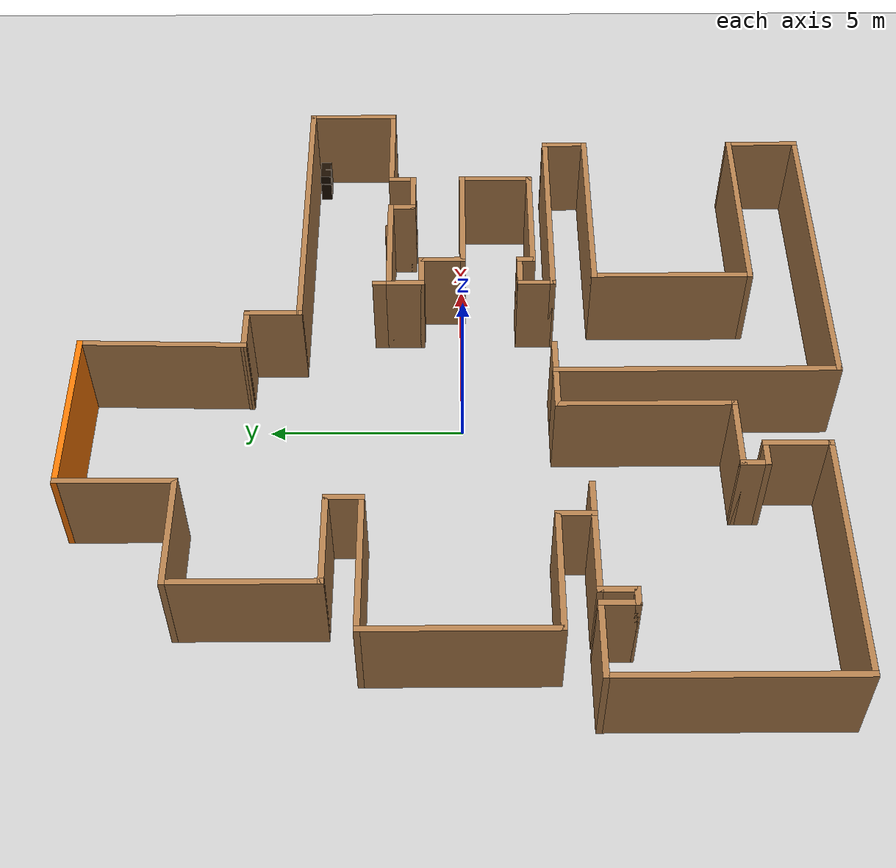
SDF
<sdf version="1.6">
 <world name="default">
  <light name="sun" type="directional">
   <pose>0 0 10 0 -0 0</pose>
   <diffuse>0.8 0.8 0.8 1</diffuse>
   <specular>0.2 0.2 0.2 1</specular>
   <attenuation>
    <range>1000</range>
    <constant>0.9</constant>
    <linear>0.01</linear>
    <quadratic>0.001</quadratic>
   </attenuation>
   <direction>-0.5 0.1 -0.9</direction>
  </light>
  <model name="ground_plane">
   <static>1</static>
   <link name="link">
    <collision name="collision">
     <geometry><plane><normal>0 0 1</normal><size>100 100</size></plane></geometry>
     <surface>
      <contact><collide_bitmask>65535</collide_bitmask></contact>
      <friction><ode><mu>100</mu><mu2>50</mu2></ode></friction>
     </surface>
    </collision>
    <visual name="visual">
     <cast_shadows>0</cast_shadows>
     <geometry><plane><normal>0 0 1</normal><size>100 100</size></plane></geometry>
     <material>
      <script><uri>file://media/materials/scripts/gazebo.material</uri><name>Gazebo/Grey</name></script>
     </material>
    </visual>
   </link>
  </model>
  <gravity>0 0 -9.8</gravity>
  <magnetic_field>6e-06 2.3e-05 -4.2e-05</magnetic_field>
  <atmosphere type="adiabatic"/>
  <physics name="default_physics" default="0" type="ode">
   <max_step_size>0.001</max_step_size>
   <real_time_factor>1</real_time_factor>
   <real_time_update_rate>1000</real_time_update_rate>
  </physics>
  <scene><ambient>0.4 0.4 0.4 1</ambient><background>0.7 0.7 0.7 1</background><shadows>1</shadows></scene>
  <audio><device>default</device></audio>
  <spherical_coordinates>
   <surface_model>EARTH_WGS84</surface_model>
   <latitude_deg>0</latitude_deg>
   <longitude_deg>0</longitude_deg>
   <elevation>0</elevation>
   <heading_deg>0</heading_deg>
  </spherical_coordinates>
  <model name="map_123">
   <pose>0.487102 0.144012 0 0 -0 0</pose>
   <link name="Wall_100">
    <collision name="Wall_100_Collision">
     <geometry><box><size>1.25 0.15 2.5</size></box></geometry>
     <pose>0 0 1.25 0 -0 0</pose>
    </collision>
    <visual name="Wall_100_Visual">
     <pose>0 0 1.25 0 -0 0</pose>
     <geometry><box><size>1.25 0.15 2.5</size></box></geometry>
     <material>
      <script><uri>file://media/materials/scripts/gazebo.material</uri><name>Gazebo/Wood</name></script>
      <ambient>1 1 1 1</ambient>
     </material>
     <meta><layer>0</layer></meta>
    </visual>
    <pose>0.978363 5.41027 0 0 -0 0</pose>
   </link>
   <link name="Wall_101">
    <collision name="Wall_101_Collision">
     <geometry><box><size>1.5 0.15 2.5</size></box></geometry>
     <pose>0 0 1.25 0 -0 0</pose>
    </collision>
    <visual name="Wall_101_Visual">
     <pose>0 0 1.25 0 -0 0</pose>
     <geometry><box><size>1.5 0.15 2.5</size></box></geometry>
     <material>
      <script><uri>file://media/materials/scripts/gazebo.material</uri><name>Gazebo/Wood</name></script>
      <ambient>1 1 1 1</ambient>
     </material>
     <meta><layer>0</layer></meta>
    </visual>
    <pose>1.52836 4.73527 0 0 -0 -1.5708</pose>
   </link>
   <link name="Wall_104">
    <collision name="Wall_104_Collision">
     <geometry><box><size>7.75 0.15 2.5</size></box></geometry>
     <pose>0 0 1.25 0 -0 0</pose>
    </collision>
    <visual name="Wall_104_Visual">
     <pose>0 0 1.25 0 -0 0</pose>
     <geometry><box><size>7.75 0.15 2.5</size></box></geometry>
     <material>
      <script><uri>file://media/materials/scripts/gazebo.material</uri><name>Gazebo/Wood</name></script>
      <ambient>1 1 1 1</ambient>
     </material>
     <meta><layer>0</layer></meta>
    </visual>
    <pose>5.32836 4.06027 0 0 -0 0</pose>
   </link>
   <link name="Wall_105">
    <collision name="Wall_105_Collision">
     <geometry><box><size>2.43611 0.15 2.5</size></box></geometry>
     <pose>0 0 1.25 0 -0 0</pose>
    </collision>
    <visual name="Wall_105_Visual">
     <pose>0 0 1.25 0 -0 0</pose>
     <geometry><box><size>2.43611 0.15 2.5</size></box></geometry>
     <material>
      <script><uri>file://media/materials/scripts/gazebo.material</uri><name>Gazebo/Wood</name></script>
      <ambient>1 1 1 1</ambient>
     </material>
     <meta><layer>0</layer></meta>
    </visual>
    <pose>9.12489 2.91722 0 0 -0 -1.57384</pose>
   </link>
   <link name="Wall_107">
    <collision name="Wall_107_Collision">
     <geometry><box><size>0.5 0.15 2.5</size></box></geometry>
     <pose>0 0 1.25 0 -0 0</pose>
    </collision>
    <visual name="Wall_107_Visual">
     <pose>0 0 1.25 0 -0 0</pose>
     <geometry><box><size>0.5 0.15 2.5</size></box></geometry>
     <material>
      <script><uri>file://media/materials/scripts/gazebo.material</uri><name>Gazebo/Wood</name></script>
      <ambient>1 1 1 1</ambient>
     </material>
     <meta><layer>0</layer></meta>
    </visual>
    <pose>2.57141 1.94917 0 0 -0 1.5708</pose>
   </link>
   <link name="Wall_109">
    <collision name="Wall_109_Collision">
     <geometry><box><size>1 0.15 2.5</size></box></geometry>
     <pose>0 0 1.25 0 -0 0</pose>
    </collision>
    <visual name="Wall_109_Visual">
     <pose>0 0 1.25 0 -0 0</pose>
     <geometry><box><size>1 0.15 2.5</size></box></geometry>
     <material>
      <script><uri>file://media/materials/scripts/gazebo.material</uri><name>Gazebo/Wood</name></script>
      <ambient>1 1 1 1</ambient>
     </material>
     <meta><layer>0</layer></meta>
    </visual>
    <pose>-0.003589 -2.47583 0 0 -0 0</pose>
   </link>
   <link name="Wall_111">
    <collision name="Wall_111_Collision">
     <geometry><box><size>1 0.15 2.5</size></box></geometry>
     <pose>0 0 1.25 0 -0 0</pose>
    </collision>
    <visual name="Wall_111_Visual">
     <pose>0 0 1.25 0 -0 0</pose>
     <geometry><box><size>1 0.15 2.5</size></box></geometry>
     <material>
      <script><uri>file://media/materials/scripts/gazebo.material</uri><name>Gazebo/Wood</name></script>
      <ambient>1 1 1 1</ambient>
     </material>
     <meta><layer>0</layer></meta>
    </visual>
    <pose>-4.40359 -3.17583 0 0 -0 0</pose>
   </link>
   <link name="Wall_17">
    <collision name="Wall_17_Collision">
     <geometry><box><size>3 0.15 2.5</size></box></geometry>
     <pose>0 0 1.25 0 -0 0</pose>
    </collision>
    <visual name="Wall_17_Visual">
     <pose>0 0 1.25 0 -0 0</pose>
     <geometry><box><size>3 0.15 2.5</size></box></geometry>
     <material>
      <script><uri>file://media/materials/scripts/gazebo.material</uri><name>Gazebo/Wood</name></script>
      <ambient>1 1 1 1</ambient>
     </material>
     <meta><layer>0</layer></meta>
    </visual>
    <pose>-3.82859 8.14917 0 0 -0 -1.5708</pose>
   </link>
   <link name="Wall_20">
    <collision name="Wall_20_Collision">
     <geometry><box><size>3 0.15 2.5</size></box></geometry>
     <pose>0 0 1.25 0 -0 0</pose>
    </collision>
    <visual name="Wall_20_Visual">
     <pose>0 0 1.25 0 -0 0</pose>
     <geometry><box><size>3 0.15 2.5</size></box></geometry>
     <material>
      <script><uri>file://media/materials/scripts/gazebo.material</uri><name>Gazebo/Wood</name></script>
      <ambient>1 1 1 1</ambient>
     </material>
     <meta><layer>0</layer></meta>
    </visual>
    <pose>-5.25359 6.72417 0 0 -0 3.14159</pose>
   </link>
   <link name="Wall_21">
    <collision name="Wall_21_Collision">
     <geometry><box><size>3.75 0.15 2.5</size></box></geometry>
     <pose>0 0 1.25 0 -0 0</pose>
    </collision>
    <visual name="Wall_21_Visual">
     <pose>0 0 1.25 0 -0 0</pose>
     <geometry><box><size>3.75 0.15 2.5</size></box></geometry>
     <material>
      <script><uri>file://media/materials/scripts/gazebo.material</uri><name>Gazebo/Wood</name></script>
      <ambient>1 1 1 1</ambient>
     </material>
     <meta><layer>0</layer></meta>
    </visual>
    <pose>-6.67859 4.92417 0 0 -0 -1.5708</pose>
   </link>
   <link name="Wall_22">
    <collision name="Wall_22_Collision">
     <geometry><box><size>2.5 0.15 2.5</size></box></geometry>
     <pose>0 0 1.25 0 -0 0</pose>
    </collision>
    <visual name="Wall_22_Visual">
     <pose>0 0 1.25 0 -0 0</pose>
     <geometry><box><size>2.5 0.15 2.5</size></box></geometry>
     <material>
      <script><uri>file://media/materials/scripts/gazebo.material</uri><name>Gazebo/Wood</name></script>
      <ambient>1 1 1 1</ambient>
     </material>
     <meta><layer>0</layer></meta>
    </visual>
    <pose>-5.50359 3.12417 0 0 -0 0</pose>
   </link>
   <link name="Wall_23">
    <collision name="Wall_23_Collision">
     <geometry><box><size>1 0.15 2.5</size></box></geometry>
     <pose>0 0 1.25 0 -0 0</pose>
    </collision>
    <visual name="Wall_23_Visual">
     <pose>0 0 1.25 0 -0 0</pose>
     <geometry><box><size>1 0.15 2.5</size></box></geometry>
     <material>
      <script><uri>file://media/materials/scripts/gazebo.material</uri><name>Gazebo/Wood</name></script>
      <ambient>1 1 1 1</ambient>
     </material>
     <meta><layer>0</layer></meta>
    </visual>
    <pose>-4.32859 2.69917 0 0 -0 -1.5708</pose>
   </link>
   <link name="Wall_24">
    <collision name="Wall_24_Collision">
     <geometry><box><size>3.75 0.15 2.5</size></box></geometry>
     <pose>0 0 1.25 0 -0 0</pose>
    </collision>
    <visual name="Wall_24_Visual">
     <pose>0 0 1.25 0 -0 0</pose>
     <geometry><box><size>3.75 0.15 2.5</size></box></geometry>
     <material>
      <script><uri>file://media/materials/scripts/gazebo.material</uri><name>Gazebo/Wood</name></script>
      <ambient>1 1 1 1</ambient>
     </material>
     <meta><layer>0</layer></meta>
    </visual>
    <pose>-6.12859 2.27417 0 0 -0 3.14159</pose>
   </link>
   <link name="Wall_25">
    <collision name="Wall_25_Collision">
     <geometry><box><size>4.75 0.15 2.5</size></box></geometry>
     <pose>0 0 1.25 0 -0 0</pose>
    </collision>
    <visual name="Wall_25_Visual">
     <pose>0 0 1.25 0 -0 0</pose>
     <geometry><box><size>4.75 0.15 2.5</size></box></geometry>
     <material>
      <script><uri>file://media/materials/scripts/gazebo.material</uri><name>Gazebo/Wood</name></script>
      <ambient>1 1 1 1</ambient>
     </material>
     <meta><layer>0</layer></meta>
    </visual>
    <pose>-7.92859 -0.025828 0 0 -0 -1.5708</pose>
   </link>
   <link name="Wall_26">
    <collision name="Wall_26_Collision">
     <geometry><box><size>3.25 0.15 2.5</size></box></geometry>
     <pose>0 0 1.25 0 -0 0</pose>
    </collision>
    <visual name="Wall_26_Visual">
     <pose>0 0 1.25 0 -0 0</pose>
     <geometry><box><size>3.25 0.15 2.5</size></box></geometry>
     <material>
      <script><uri>file://media/materials/scripts/gazebo.material</uri><name>Gazebo/Wood</name></script>
      <ambient>1 1 1 1</ambient>
     </material>
     <meta><layer>0</layer></meta>
    </visual>
    <pose>-6.37859 -2.32583 0 0 -0 0</pose>
   </link>
   <link name="Wall_27">
    <collision name="Wall_27_Collision">
     <geometry><box><size>1 0.15 2.5</size></box></geometry>
     <pose>0 0 1.25 0 -0 0</pose>
    </collision>
    <visual name="Wall_27_Visual">
     <pose>0 0 1.25 0 -0 0</pose>
     <geometry><box><size>1 0.15 2.5</size></box></geometry>
     <material>
      <script><uri>file://media/materials/scripts/gazebo.material</uri><name>Gazebo/Wood</name></script>
      <ambient>1 1 1 1</ambient>
     </material>
     <meta><layer>0</layer></meta>
    </visual>
    <pose>-4.82859 -2.75083 0 0 -0 -1.5708</pose>
   </link>
   <link name="Wall_28">
    <collision name="Wall_28_Collision">
     <geometry><box><size>2.25 0.15 2.5</size></box></geometry>
     <pose>0 0 1.25 0 -0 0</pose>
    </collision>
    <visual name="Wall_28_Visual">
     <pose>0 0 1.25 0 -0 0</pose>
     <geometry><box><size>2.25 0.15 2.5</size></box></geometry>
     <material>
      <script><uri>file://media/materials/scripts/gazebo.material</uri><name>Gazebo/Wood</name></script>
      <ambient>1 1 1 1</ambient>
     </material>
     <meta><layer>0</layer></meta>
    </visual>
    <pose>-5.87859 -3.17583 0 0 -0 3.14159</pose>
   </link>
   <link name="Wall_29">
    <collision name="Wall_29_Collision">
     <geometry><box><size>1 0.15 2.5</size></box></geometry>
     <pose>0 0 1.25 0 -0 0</pose>
    </collision>
    <visual name="Wall_29_Visual">
     <pose>0 0 1.25 0 -0 0</pose>
     <geometry><box><size>1 0.15 2.5</size></box></geometry>
     <material>
      <script><uri>file://media/materials/scripts/gazebo.material</uri><name>Gazebo/Wood</name></script>
      <ambient>1 1 1 1</ambient>
     </material>
     <meta><layer>0</layer></meta>
    </visual>
    <pose>-6.92859 -3.60083 0 0 -0 -1.5708</pose>
   </link>
   <link name="Wall_30">
    <collision name="Wall_30_Collision">
     <geometry><box><size>0.5 0.15 2.5</size></box></geometry>
     <pose>0 0 1.25 0 -0 0</pose>
    </collision>
    <visual name="Wall_30_Visual">
     <pose>0 0 1.25 0 -0 0</pose>
     <geometry><box><size>0.5 0.15 2.5</size></box></geometry>
     <material>
      <script><uri>file://media/materials/scripts/gazebo.material</uri><name>Gazebo/Wood</name></script>
      <ambient>1 1 1 1</ambient>
     </material>
     <meta><layer>0</layer></meta>
    </visual>
    <pose>-7.10359 -4.02583 0 0 -0 3.14159</pose>
   </link>
   <link name="Wall_31">
    <collision name="Wall_31_Collision">
     <geometry><box><size>1 0.15 2.5</size></box></geometry>
     <pose>0 0 1.25 0 -0 0</pose>
    </collision>
    <visual name="Wall_31_Visual">
     <pose>0 0 1.25 0 -0 0</pose>
     <geometry><box><size>1 0.15 2.5</size></box></geometry>
     <material>
      <script><uri>file://media/materials/scripts/gazebo.material</uri><name>Gazebo/Wood</name></script>
      <ambient>1 1 1 1</ambient>
     </material>
     <meta><layer>0</layer></meta>
    </visual>
    <pose>-7.27859 -3.60083 0 0 -0 1.5708</pose>
   </link>
   <link name="Wall_32">
    <collision name="Wall_32_Collision">
     <geometry><box><size>2 0.15 2.5</size></box></geometry>
     <pose>0 0 1.25 0 -0 0</pose>
    </collision>
    <visual name="Wall_32_Visual">
     <pose>0 0 1.25 0 -0 0</pose>
     <geometry><box><size>2 0.15 2.5</size></box></geometry>
     <material>
      <script><uri>file://media/materials/scripts/gazebo.material</uri><name>Gazebo/Wood</name></script>
      <ambient>1 1 1 1</ambient>
     </material>
     <meta><layer>0</layer></meta>
    </visual>
    <pose>-8.20359 -3.17583 0 0 -0 3.14159</pose>
   </link>
   <link name="Wall_33">
    <collision name="Wall_33_Collision">
     <geometry><box><size>6 0.15 2.5</size></box></geometry>
     <pose>0 0 1.25 0 -0 0</pose>
    </collision>
    <visual name="Wall_33_Visual">
     <pose>0 0 1.25 0 -0 0</pose>
     <geometry><box><size>6 0.15 2.5</size></box></geometry>
     <material>
      <script><uri>file://media/materials/scripts/gazebo.material</uri><name>Gazebo/Wood</name></script>
      <ambient>1 1 1 1</ambient>
     </material>
     <meta><layer>0</layer></meta>
    </visual>
    <pose>-9.12859 -6.10083 0 0 -0 -1.5708</pose>
   </link>
   <link name="Wall_34">
    <collision name="Wall_34_Collision">
     <geometry><box><size>6.5 0.15 2.5</size></box></geometry>
     <pose>0 0 1.25 0 -0 0</pose>
    </collision>
    <visual name="Wall_34_Visual">
     <pose>0 0 1.25 0 -0 0</pose>
     <geometry><box><size>6.5 0.15 2.5</size></box></geometry>
     <material>
      <script><uri>file://media/materials/scripts/gazebo.material</uri><name>Gazebo/Wood</name></script>
      <ambient>1 1 1 1</ambient>
     </material>
     <meta><layer>0</layer></meta>
    </visual>
    <pose>-5.95359 -9.02583 0 0 -0 0</pose>
   </link>
   <link name="Wall_35">
    <collision name="Wall_35_Collision">
     <geometry><box><size>1.75 0.15 2.5</size></box></geometry>
     <pose>0 0 1.25 0 -0 0</pose>
    </collision>
    <visual name="Wall_35_Visual">
     <pose>0 0 1.25 0 -0 0</pose>
     <geometry><box><size>1.75 0.15 2.5</size></box></geometry>
     <material>
      <script><uri>file://media/materials/scripts/gazebo.material</uri><name>Gazebo/Wood</name></script>
      <ambient>1 1 1 1</ambient>
     </material>
     <meta><layer>0</layer></meta>
    </visual>
    <pose>-2.77859 -8.22583 0 0 -0 1.5708</pose>
   </link>
   <link name="Wall_36">
    <collision name="Wall_36_Collision">
     <geometry><box><size>0.75 0.15 2.5</size></box></geometry>
     <pose>0 0 1.25 0 -0 0</pose>
    </collision>
    <visual name="Wall_36_Visual">
     <pose>0 0 1.25 0 -0 0</pose>
     <geometry><box><size>0.75 0.15 2.5</size></box></geometry>
     <material>
      <script><uri>file://media/materials/scripts/gazebo.material</uri><name>Gazebo/Wood</name></script>
      <ambient>1 1 1 1</ambient>
     </material>
     <meta><layer>0</layer></meta>
    </visual>
    <pose>-3.07859 -7.42583 0 0 -0 3.14159</pose>
   </link>
   <link name="Wall_37">
    <collision name="Wall_37_Collision">
     <geometry><box><size>0.75 0.15 2.5</size></box></geometry>
     <pose>0 0 1.25 0 -0 0</pose>
    </collision>
    <visual name="Wall_37_Visual">
     <pose>0 0 1.25 0 -0 0</pose>
     <geometry><box><size>0.75 0.15 2.5</size></box></geometry>
     <material>
      <script><uri>file://media/materials/scripts/gazebo.material</uri><name>Gazebo/Wood</name></script>
      <ambient>1 1 1 1</ambient>
     </material>
     <meta><layer>0</layer></meta>
    </visual>
    <pose>-3.37859 -7.12583 0 0 -0 1.5708</pose>
   </link>
   <link name="Wall_38">
    <collision name="Wall_38_Collision">
     <geometry><box><size>2 0.15 2.5</size></box></geometry>
     <pose>0 0 1.25 0 -0 0</pose>
    </collision>
    <visual name="Wall_38_Visual">
     <pose>0 0 1.25 0 -0 0</pose>
     <geometry><box><size>2 0.15 2.5</size></box></geometry>
     <material>
      <script><uri>file://media/materials/scripts/gazebo.material</uri><name>Gazebo/Wood</name></script>
      <ambient>1 1 1 1</ambient>
     </material>
     <meta><layer>0</layer></meta>
    </visual>
    <pose>-2.45359 -6.82583 0 0 -0 0</pose>
   </link>
   <link name="Wall_39">
    <collision name="Wall_39_Collision">
     <geometry><box><size>4.5 0.15 2.5</size></box></geometry>
     <pose>0 0 1.25 0 -0 0</pose>
    </collision>
    <visual name="Wall_39_Visual">
     <pose>0 0 1.25 0 -0 0</pose>
     <geometry><box><size>4.5 0.15 2.5</size></box></geometry>
     <material>
      <script><uri>file://media/materials/scripts/gazebo.material</uri><name>Gazebo/Wood</name></script>
      <ambient>1 1 1 1</ambient>
     </material>
     <meta><layer>0</layer></meta>
    </visual>
    <pose>-1.52859 -4.65083 0 0 -0 1.5708</pose>
   </link>
   <link name="Wall_40">
    <collision name="Wall_40_Collision">
     <geometry><box><size>1.25 0.15 2.5</size></box></geometry>
     <pose>0 0 1.25 0 -0 0</pose>
    </collision>
    <visual name="Wall_40_Visual">
     <pose>0 0 1.25 0 -0 0</pose>
     <geometry><box><size>1.25 0.15 2.5</size></box></geometry>
     <material>
      <script><uri>file://media/materials/scripts/gazebo.material</uri><name>Gazebo/Wood</name></script>
      <ambient>1 1 1 1</ambient>
     </material>
     <meta><layer>0</layer></meta>
    </visual>
    <pose>-0.97859 -2.47583 0 0 -0 0</pose>
   </link>
   <link name="Wall_41">
    <collision name="Wall_41_Collision">
     <geometry><box><size>7.25 0.15 2.5</size></box></geometry>
     <pose>0 0 1.25 0 -0 0</pose>
    </collision>
    <visual name="Wall_41_Visual">
     <pose>0 0 1.25 0 -0 0</pose>
     <geometry><box><size>7.25 0.15 2.5</size></box></geometry>
     <material>
      <script><uri>file://media/materials/scripts/gazebo.material</uri><name>Gazebo/Wood</name></script>
      <ambient>1 1 1 1</ambient>
     </material>
     <meta><layer>0</layer></meta>
    </visual>
    <pose>-0.428589 -6.02583 0 0 -0 -1.5708</pose>
   </link>
   <link name="Wall_43">
    <collision name="Wall_43_Collision">
     <geometry><box><size>8.5 0.15 2.5</size></box></geometry>
     <pose>0 0 1.25 0 -0 0</pose>
    </collision>
    <visual name="Wall_43_Visual">
     <pose>0 0 1.25 0 -0 0</pose>
     <geometry><box><size>8.5 0.15 2.5</size></box></geometry>
     <material>
      <script><uri>file://media/materials/scripts/gazebo.material</uri><name>Gazebo/Wood</name></script>
      <ambient>1 1 1 1</ambient>
     </material>
     <meta><layer>0</layer></meta>
    </visual>
    <pose>3.74641 -9.57583 0 0 -0 0</pose>
   </link>
   <link name="Wall_44">
    <collision name="Wall_44_Collision">
     <geometry><box><size>2 0.15 2.5</size></box></geometry>
     <pose>0 0 1.25 0 -0 0</pose>
    </collision>
    <visual name="Wall_44_Visual">
     <pose>0 0 1.25 0 -0 0</pose>
     <geometry><box><size>2 0.15 2.5</size></box></geometry>
     <material>
      <script><uri>file://media/materials/scripts/gazebo.material</uri><name>Gazebo/Wood</name></script>
      <ambient>1 1 1 1</ambient>
     </material>
     <meta><layer>0</layer></meta>
    </visual>
    <pose>7.92141 -8.65083 0 0 -0 1.5708</pose>
   </link>
   <link name="Wall_45">
    <collision name="Wall_45_Collision">
     <geometry><box><size>5.25 0.15 2.5</size></box></geometry>
     <pose>0 0 1.25 0 -0 0</pose>
    </collision>
    <visual name="Wall_45_Visual">
     <pose>0 0 1.25 0 -0 0</pose>
     <geometry><box><size>5.25 0.15 2.5</size></box></geometry>
     <material>
      <script><uri>file://media/materials/scripts/gazebo.material</uri><name>Gazebo/Wood</name></script>
      <ambient>1 1 1 1</ambient>
     </material>
     <meta><layer>0</layer></meta>
    </visual>
    <pose>5.37141 -7.72583 0 0 -0 3.14159</pose>
   </link>
   <link name="Wall_46">
    <collision name="Wall_46_Collision">
     <geometry><box><size>4.25 0.15 2.5</size></box></geometry>
     <pose>0 0 1.25 0 -0 0</pose>
    </collision>
    <visual name="Wall_46_Visual">
     <pose>0 0 1.25 0 -0 0</pose>
     <geometry><box><size>4.25 0.15 2.5</size></box></geometry>
     <material>
      <script><uri>file://media/materials/scripts/gazebo.material</uri><name>Gazebo/Wood</name></script>
      <ambient>1 1 1 1</ambient>
     </material>
     <meta><layer>0</layer></meta>
    </visual>
    <pose>2.82141 -5.67583 0 0 -0 1.5708</pose>
   </link>
   <link name="Wall_47">
    <collision name="Wall_47_Collision">
     <geometry><box><size>5.25 0.15 2.5</size></box></geometry>
     <pose>0 0 1.25 0 -0 0</pose>
    </collision>
    <visual name="Wall_47_Visual">
     <pose>0 0 1.25 0 -0 0</pose>
     <geometry><box><size>5.25 0.15 2.5</size></box></geometry>
     <material>
      <script><uri>file://media/materials/scripts/gazebo.material</uri><name>Gazebo/Wood</name></script>
      <ambient>1 1 1 1</ambient>
     </material>
     <meta><layer>0</layer></meta>
    </visual>
    <pose>5.37141 -3.62583 0 0 -0 0</pose>
   </link>
   <link name="Wall_70">
    <collision name="Wall_70_Collision">
     <geometry><box><size>1.25 0.15 2.5</size></box></geometry>
     <pose>0 0 1.25 0 -0 0</pose>
    </collision>
    <visual name="Wall_70_Visual">
     <pose>0 0 1.25 0 -0 0</pose>
     <geometry><box><size>1.25 0.15 2.5</size></box></geometry>
     <material>
      <script><uri>file://media/materials/scripts/gazebo.material</uri><name>Gazebo/Wood</name></script>
      <ambient>1 1 1 1</ambient>
     </material>
     <meta><layer>0</layer></meta>
    </visual>
    <pose>7.92141 -3.07583 0 0 -0 1.5708</pose>
   </link>
   <link name="Wall_71">
    <collision name="Wall_71_Collision">
     <geometry><box><size>5.5 0.15 2.5</size></box></geometry>
     <pose>0 0 1.25 0 -0 0</pose>
    </collision>
    <visual name="Wall_71_Visual">
     <pose>0 0 1.25 0 -0 0</pose>
     <geometry><box><size>5.5 0.15 2.5</size></box></geometry>
     <material>
      <script><uri>file://media/materials/scripts/gazebo.material</uri><name>Gazebo/Wood</name></script>
      <ambient>1 1 1 1</ambient>
     </material>
     <meta><layer>0</layer></meta>
    </visual>
    <pose>5.24641 -2.52583 0 0 -0 3.14159</pose>
   </link>
   <link name="Wall_72">
    <collision name="Wall_72_Collision">
     <geometry><box><size>1 0.15 2.5</size></box></geometry>
     <pose>0 0 1.25 0 -0 0</pose>
    </collision>
    <visual name="Wall_72_Visual">
     <pose>0 0 1.25 0 -0 0</pose>
     <geometry><box><size>1 0.15 2.5</size></box></geometry>
     <material>
      <script><uri>file://media/materials/scripts/gazebo.material</uri><name>Gazebo/Wood</name></script>
      <ambient>1 1 1 1</ambient>
     </material>
     <meta><layer>0</layer></meta>
    </visual>
    <pose>2.57141 -2.10083 0 0 -0 1.5708</pose>
   </link>
   <link name="Wall_73">
    <collision name="Wall_73_Collision">
     <geometry><box><size>1 0.15 2.5</size></box></geometry>
     <pose>0 0 1.25 0 -0 0</pose>
    </collision>
    <visual name="Wall_73_Visual">
     <pose>0 0 1.25 0 -0 0</pose>
     <geometry><box><size>1 0.15 2.5</size></box></geometry>
     <material>
      <script><uri>file://media/materials/scripts/gazebo.material</uri><name>Gazebo/Wood</name></script>
      <ambient>1 1 1 1</ambient>
     </material>
     <meta><layer>0</layer></meta>
    </visual>
    <pose>2.99641 -1.67583 0 0 -0 0</pose>
   </link>
   <link name="Wall_74">
    <collision name="Wall_74_Collision">
     <geometry><box><size>0.5 0.15 2.5</size></box></geometry>
     <pose>0 0 1.25 0 -0 0</pose>
    </collision>
    <visual name="Wall_74_Visual">
     <pose>0 0 1.25 0 -0 0</pose>
     <geometry><box><size>0.5 0.15 2.5</size></box></geometry>
     <material>
      <script><uri>file://media/materials/scripts/gazebo.material</uri><name>Gazebo/Wood</name></script>
      <ambient>1 1 1 1</ambient>
     </material>
     <meta><layer>0</layer></meta>
    </visual>
    <pose>3.42141 -1.85083 0 0 -0 -1.5708</pose>
   </link>
   <link name="Wall_75">
    <collision name="Wall_75_Collision">
     <geometry><box><size>3.25 0.15 2.5</size></box></geometry>
     <pose>0 0 1.25 0 -0 0</pose>
    </collision>
    <visual name="Wall_75_Visual">
     <pose>0 0 1.25 0 -0 0</pose>
     <geometry><box><size>3.25 0.15 2.5</size></box></geometry>
     <material>
      <script><uri>file://media/materials/scripts/gazebo.material</uri><name>Gazebo/Wood</name></script>
      <ambient>1 1 1 1</ambient>
     </material>
     <meta><layer>0</layer></meta>
    </visual>
    <pose>4.97141 -2.02583 0 0 -0 0</pose>
   </link>
   <link name="Wall_78">
    <collision name="Wall_78_Collision">
     <geometry><box><size>2 0.15 2.5</size></box></geometry>
     <pose>0 0 1.25 0 -0 0</pose>
    </collision>
    <visual name="Wall_78_Visual">
     <pose>0 0 1.25 0 -0 0</pose>
     <geometry><box><size>2 0.15 2.5</size></box></geometry>
     <material>
      <script><uri>file://media/materials/scripts/gazebo.material</uri><name>Gazebo/Wood</name></script>
      <ambient>1 1 1 1</ambient>
     </material>
     <meta><layer>0</layer></meta>
    </visual>
    <pose>6.52141 -1.10083 0 0 -0 1.5708</pose>
   </link>
   <link name="Wall_79">
    <collision name="Wall_79_Collision">
     <geometry><box><size>3.25 0.15 2.5</size></box></geometry>
     <pose>0 0 1.25 0 -0 0</pose>
    </collision>
    <visual name="Wall_79_Visual">
     <pose>0 0 1.25 0 -0 0</pose>
     <geometry><box><size>3.25 0.15 2.5</size></box></geometry>
     <material>
      <script><uri>file://media/materials/scripts/gazebo.material</uri><name>Gazebo/Wood</name></script>
      <ambient>1 1 1 1</ambient>
     </material>
     <meta><layer>0</layer></meta>
    </visual>
    <pose>4.97141 -0.175828 0 0 -0 3.14159</pose>
   </link>
   <link name="Wall_80">
    <collision name="Wall_80_Collision">
     <geometry><box><size>1.25 0.15 2.5</size></box></geometry>
     <pose>0 0 1.25 0 -0 0</pose>
    </collision>
    <visual name="Wall_80_Visual">
     <pose>0 0 1.25 0 -0 0</pose>
     <geometry><box><size>1.25 0.15 2.5</size></box></geometry>
     <material>
      <script><uri>file://media/materials/scripts/gazebo.material</uri><name>Gazebo/Wood</name></script>
      <ambient>1 1 1 1</ambient>
     </material>
     <meta><layer>0</layer></meta>
    </visual>
    <pose>3.42141 0.374172 0 0 -0 1.5708</pose>
   </link>
   <link name="Wall_81">
    <collision name="Wall_81_Collision">
     <geometry><box><size>1 0.15 2.5</size></box></geometry>
     <pose>0 0 1.25 0 -0 0</pose>
    </collision>
    <visual name="Wall_81_Visual">
     <pose>0 0 1.25 0 -0 0</pose>
     <geometry><box><size>1 0.15 2.5</size></box></geometry>
     <material>
      <script><uri>file://media/materials/scripts/gazebo.material</uri><name>Gazebo/Wood</name></script>
      <ambient>1 1 1 1</ambient>
     </material>
     <meta><layer>0</layer></meta>
    </visual>
    <pose>2.99641 0.924172 0 0 -0 3.14159</pose>
   </link>
   <link name="Wall_82">
    <collision name="Wall_82_Collision">
     <geometry><box><size>1 0.15 2.5</size></box></geometry>
     <pose>0 0 1.25 0 -0 0</pose>
    </collision>
    <visual name="Wall_82_Visual">
     <pose>0 0 1.25 0 -0 0</pose>
     <geometry><box><size>1 0.15 2.5</size></box></geometry>
     <material>
      <script><uri>file://media/materials/scripts/gazebo.material</uri><name>Gazebo/Wood</name></script>
      <ambient>1 1 1 1</ambient>
     </material>
     <meta><layer>0</layer></meta>
    </visual>
    <pose>2.57141 1.34917 0 0 -0 1.5708</pose>
   </link>
   <link name="Wall_83">
    <collision name="Wall_83_Collision">
     <geometry><box><size>3 0.15 2.5</size></box></geometry>
     <pose>0 0 1.25 0 -0 0</pose>
    </collision>
    <visual name="Wall_83_Visual">
     <pose>0 0 1.25 0 -0 0</pose>
     <geometry><box><size>3 0.15 2.5</size></box></geometry>
     <material>
      <script><uri>file://media/materials/scripts/gazebo.material</uri><name>Gazebo/Wood</name></script>
      <ambient>1 1 1 1</ambient>
     </material>
     <meta><layer>0</layer></meta>
    </visual>
    <pose>3.99641 1.77417 0 0 -0 0</pose>
   </link>
   <link name="Wall_84">
    <collision name="Wall_84_Collision">
     <geometry><box><size>0.75 0.15 2.5</size></box></geometry>
     <pose>0 0 1.25 0 -0 0</pose>
    </collision>
    <visual name="Wall_84_Visual">
     <pose>0 0 1.25 0 -0 0</pose>
     <geometry><box><size>0.75 0.15 2.5</size></box></geometry>
     <material>
      <script><uri>file://media/materials/scripts/gazebo.material</uri><name>Gazebo/Wood</name></script>
      <ambient>1 1 1 1</ambient>
     </material>
     <meta><layer>0</layer></meta>
    </visual>
    <pose>5.42141 1.47417 0 0 -0 -1.5708</pose>
   </link>
   <link name="Wall_85">
    <collision name="Wall_85_Collision">
     <geometry><box><size>1.25 0.15 2.5</size></box></geometry>
     <pose>0 0 1.25 0 -0 0</pose>
    </collision>
    <visual name="Wall_85_Visual">
     <pose>0 0 1.25 0 -0 0</pose>
     <geometry><box><size>1.25 0.15 2.5</size></box></geometry>
     <material>
      <script><uri>file://media/materials/scripts/gazebo.material</uri><name>Gazebo/Wood</name></script>
      <ambient>1 1 1 1</ambient>
     </material>
     <meta><layer>0</layer></meta>
    </visual>
    <pose>5.97141 1.17417 0 0 -0 0</pose>
   </link>
   <link name="Wall_86">
    <collision name="Wall_86_Collision">
     <geometry><box><size>0.75 0.15 2.5</size></box></geometry>
     <pose>0 0 1.25 0 -0 0</pose>
    </collision>
    <visual name="Wall_86_Visual">
     <pose>0 0 1.25 0 -0 0</pose>
     <geometry><box><size>0.75 0.15 2.5</size></box></geometry>
     <material>
      <script><uri>file://media/materials/scripts/gazebo.material</uri><name>Gazebo/Wood</name></script>
      <ambient>1 1 1 1</ambient>
     </material>
     <meta><layer>0</layer></meta>
    </visual>
    <pose>6.52141 1.47417 0 0 -0 1.5708</pose>
   </link>
   <link name="Wall_87">
    <collision name="Wall_87_Collision">
     <geometry><box><size>2.75 0.15 2.5</size></box></geometry>
     <pose>0 0 1.25 0 -0 0</pose>
    </collision>
    <visual name="Wall_87_Visual">
     <pose>0 0 1.25 0 -0 0</pose>
     <geometry><box><size>2.75 0.15 2.5</size></box></geometry>
     <material>
      <script><uri>file://media/materials/scripts/gazebo.material</uri><name>Gazebo/Wood</name></script>
      <ambient>1 1 1 1</ambient>
     </material>
     <meta><layer>0</layer></meta>
    </visual>
    <pose>7.82141 1.77417 0 0 -0 0</pose>
   </link>
   <link name="Wall_91">
    <collision name="Wall_91_Collision">
     <geometry><box><size>4.5 0.15 2.5</size></box></geometry>
     <pose>0 0 1.25 0 -0 0</pose>
    </collision>
    <visual name="Wall_91_Visual">
     <pose>0 0 1.25 0 -0 0</pose>
     <geometry><box><size>4.5 0.15 2.5</size></box></geometry>
     <material>
      <script><uri>file://media/materials/scripts/gazebo.material</uri><name>Gazebo/Grey</name></script>
      <ambient>0.996078 0.47451 0.0196078 1</ambient>
     </material>
     <meta><layer>0</layer></meta>
    </visual>
    <pose>-1.65359 9.57417 0 0 -0 0</pose>
   </link>
   <link name="Wall_92">
    <collision name="Wall_92_Collision">
     <geometry><box><size>4.31494 0.15 2.5</size></box></geometry>
     <pose>0 0 1.25 0 -0 0</pose>
    </collision>
    <visual name="Wall_92_Visual">
     <pose>0 0 1.25 0 -0 0</pose>
     <geometry><box><size>4.31494 0.15 2.5</size></box></geometry>
     <material>
      <script><uri>file://media/materials/scripts/gazebo.material</uri><name>Gazebo/Wood</name></script>
      <ambient>1 1 1 1</ambient>
     </material>
     <meta><layer>0</layer></meta>
    </visual>
    <pose>0.474887 7.49222 0 0 -0 -1.59314</pose>
   </link>
   <static>1</static>
  </model>
  <model name="6_Cube_StorageE">
   <link name="Wall_0">
    <pose>0 0 0.01 0 -0 0</pose>
    <inertial>
     <mass>1.6201</mass>
     <inertia><ixx>0.0119</ixx><iyy>0.0631</iyy><izz>0.0513</izz><ixy>0</ixy><ixz>0</ixz><iyz>0</iyz></inertia>
    </inertial>
    <collision name="Wall_0_Collision"><geometry><box><size>0.616 0.296 0.02</size></box></geometry></collision>
    <visual name="Wall_0_Visual">
     <geometry><box><size>0.616 0.296 0.02</size></box></geometry>
     <material>
      <script><uri>file://media/materials/scripts/gazebo.material</uri><name>Gazebo/Grey</name></script>
      <ambient>0.105882 0.0509804 0 1</ambient>
     </material>
    </visual>
   </link>
   <joint name="0_2" type="fixed">
    <pose>-0.308 0 0 0 -0 0</pose>
    <parent>Wall_2</parent>
    <child>Wall_0</child>
    <axis>
     <xyz>1 0 0</xyz>
     <use_parent_model_frame>0</use_parent_model_frame>
     <limit><lower>-1e+16</lower><upper>1e+16</upper></limit>
    </axis>
   </joint>
   <joint name="0_12" type="fixed">
    <parent>Wall_12</parent>
    <child>Wall_0</child>
    <axis>
     <xyz>0 0 1</xyz>
     <use_parent_model_frame>0</use_parent_model_frame>
     <limit><lower>-1e+16</lower><upper>1e+16</upper></limit>
    </axis>
   </joint>
   <joint name="0_4" type="fixed">
    <pose>0.308 0 0 0 -0 0</pose>
    <parent>Wall_4</parent>
    <child>Wall_0</child>
    <axis>
     <xyz>1 0 0</xyz>
     <use_parent_model_frame>0</use_parent_model_frame>
     <limit><lower>-1e+16</lower><upper>1e+16</upper></limit>
    </axis>
   </joint>
   <link name="Wall_10">
    <pose>0 0 0.61 0 -0 0</pose>
    <inertial>
     <mass>1.6201</mass>
     <inertia><ixx>0.0119</ixx><iyy>0.0631</iyy><izz>0.0513</izz><ixy>0</ixy><ixz>0</ixz><iyz>0</iyz></inertia>
    </inertial>
    <collision name="Wall_10_Collision"><geometry><box><size>0.616 0.296 0.02</size></box></geometry></collision>
    <visual name="Wall_10_Visual">
     <geometry><box><size>0.616 0.296 0.02</size></box></geometry>
     <material>
      <script><uri>file://media/materials/scripts/gazebo.material</uri><name>Gazebo/Grey</name></script>
      <ambient>0.105882 0.0509804 0 1</ambient>
     </material>
    </visual>
   </link>
   <joint name="10_2" type="fixed">
    <pose>-0.308 0 0 0 -0 0</pose>
    <parent>Wall_2</parent>
    <child>Wall_10</child>
    <axis>
     <xyz>1 0 0</xyz>
     <use_parent_model_frame>0</use_parent_model_frame>
     <limit><lower>-1e+16</lower><upper>1e+16</upper></limit>
    </axis>
   </joint>
   <joint name="10_12" type="fixed">
    <parent>Wall_12</parent>
    <child>Wall_10</child>
    <axis>
     <xyz>0 0 1</xyz>
     <use_parent_model_frame>0</use_parent_model_frame>
     <limit><lower>-1e+16</lower><upper>1e+16</upper></limit>
    </axis>
   </joint>
   <joint name="10_4" type="fixed">
    <pose>0.308 0 0 0 -0 0</pose>
    <parent>Wall_4</parent>
    <child>Wall_10</child>
    <axis>
     <xyz>1 0 0</xyz>
     <use_parent_model_frame>0</use_parent_model_frame>
     <limit><lower>-1e+16</lower><upper>1e+16</upper></limit>
    </axis>
   </joint>
   <link name="Wall_12">
    <pose>0 0 0.4575 0 -0 0</pose>
    <inertial>
     <mass>2.4065</mass>
     <inertia><ixx>0.0177</ixx><iyy>0.1855</iyy><izz>0.168</izz><ixy>0</ixy><ixz>0</ixz><iyz>0</iyz></inertia>
    </inertial>
    <collision name="Wall_12_Collision"><geometry><box><size>0.02 0.296 0.915</size></box></geometry></collision>
    <visual name="Wall_12_Visual">
     <geometry><box><size>0.02 0.296 0.915</size></box></geometry>
     <material>
      <script><uri>file://media/materials/scripts/gazebo.material</uri><name>Gazebo/Grey</name></script>
      <ambient>0.105882 0.0509804 0 1</ambient>
     </material>
    </visual>
   </link>
   <link name="Wall_2">
    <pose>-0.298 0 0.4575 0 -0 0</pose>
    <inertial>
     <mass>2.4065</mass>
     <inertia><ixx>0.0177</ixx><iyy>0.1855</iyy><izz>0.168</izz><ixy>0</ixy><ixz>0</ixz><iyz>0</iyz></inertia>
    </inertial>
    <collision name="Wall_2_Collision"><geometry><box><size>0.02 0.296 0.915</size></box></geometry></collision>
    <visual name="Wall_2_Visual">
     <geometry><box><size>0.02 0.296 0.915</size></box></geometry>
     <material>
      <script><uri>file://media/materials/scripts/gazebo.material</uri><name>Gazebo/Grey</name></script>
      <ambient>0.105882 0.0509804 0 1</ambient>
     </material>
    </visual>
   </link>
   <link name="Wall_4">
    <pose>0.298 0 0.4575 0 -0 0</pose>
    <inertial>
     <mass>2.4065</mass>
     <inertia><ixx>0.0177</ixx><iyy>0.1855</iyy><izz>0.168</izz><ixy>0</ixy><ixz>0</ixz><iyz>0</iyz></inertia>
    </inertial>
    <collision name="Wall_4_Collision"><geometry><box><size>0.02 0.296 0.915</size></box></geometry></collision>
    <visual name="Wall_4_Visual">
     <geometry><box><size>0.02 0.296 0.915</size></box></geometry>
     <material>
      <script><uri>file://media/materials/scripts/gazebo.material</uri><name>Gazebo/Grey</name></script>
      <ambient>0.105882 0.0509804 0 1</ambient>
     </material>
    </visual>
   </link>
   <link name="Wall_6">
    <pose>0 0 0.905 0 -0 0</pose>
    <inertial>
     <mass>1.6201</mass>
     <inertia><ixx>0.0119</ixx><iyy>0.0631</iyy><izz>0.0513</izz><ixy>0</ixy><ixz>0</ixz><iyz>0</iyz></inertia>
    </inertial>
    <collision name="Wall_6_Collision"><geometry><box><size>0.616 0.296 0.02</size></box></geometry></collision>
    <visual name="Wall_6_Visual">
     <geometry><box><size>0.616 0.296 0.02</size></box></geometry>
     <material>
      <script><uri>file://media/materials/scripts/gazebo.material</uri><name>Gazebo/Grey</name></script>
      <ambient>0.105882 0.0509804 0 1</ambient>
     </material>
    </visual>
   </link>
   <joint name="6_2" type="fixed">
    <pose>-0.308 0 0 0 -0 0</pose>
    <parent>Wall_2</parent>
    <child>Wall_6</child>
    <axis>
     <xyz>2 0 0</xyz>
     <use_parent_model_frame>0</use_parent_model_frame>
     <limit><lower>-1e+16</lower><upper>1e+16</upper></limit>
    </axis>
   </joint>
   <joint name="6_12" type="fixed">
    <parent>Wall_12</parent>
    <child>Wall_6</child>
    <axis>
     <xyz>0 0 1</xyz>
     <use_parent_model_frame>0</use_parent_model_frame>
     <limit><lower>-1e+16</lower><upper>1e+16</upper></limit>
    </axis>
   </joint>
   <joint name="6_4" type="fixed">
    <pose>0.308 0 0 0 -0 0</pose>
    <parent>Wall_4</parent>
    <child>Wall_6</child>
    <axis>
     <xyz>1 0 0</xyz>
     <use_parent_model_frame>0</use_parent_model_frame>
     <limit><lower>-1e+16</lower><upper>1e+16</upper></limit>
    </axis>
   </joint>
   <link name="Wall_8">
    <pose>0 0 0.305 0 -0 0</pose>
    <inertial>
     <mass>1.6201</mass>
     <inertia><ixx>0.0119</ixx><iyy>0.0631</iyy><izz>0.0513</izz><ixy>0</ixy><ixz>0</ixz><iyz>0</iyz></inertia>
    </inertial>
    <collision name="Wall_8_Collision"><geometry><box><size>0.616 0.296 0.02</size></box></geometry></collision>
    <visual name="Wall_8_Visual">
     <geometry><box><size>0.616 0.296 0.02</size></box></geometry>
     <material>
      <script><uri>file://media/materials/scripts/gazebo.material</uri><name>Gazebo/Grey</name></script>
      <ambient>0.105882 0.0509804 0 1</ambient>
     </material>
    </visual>
   </link>
   <joint name="8_2" type="fixed">
    <pose>-0.308 0 0 0 -0 0</pose>
    <parent>Wall_2</parent>
    <child>Wall_8</child>
    <axis>
     <xyz>1 0 0</xyz>
     <use_parent_model_frame>0</use_parent_model_frame>
     <limit><lower>-1e+16</lower><upper>1e+16</upper></limit>
    </axis>
   </joint>
   <joint name="8_12" type="fixed">
    <parent>Wall_12</parent>
    <child>Wall_8</child>
    <axis>
     <xyz>0 0 1</xyz>
     <use_parent_model_frame>0</use_parent_model_frame>
     <limit><lower>-1e+16</lower><upper>1e+16</upper></limit>
    </axis>
   </joint>
   <joint name="8_4" type="fixed">
    <pose>0.308 0 0 0 -0 0</pose>
    <parent>Wall_4</parent>
    <child>Wall_8</child>
    <axis>
     <xyz>1 0 0</xyz>
     <use_parent_model_frame>0</use_parent_model_frame>
     <limit><lower>-1e+16</lower><upper>1e+16</upper></limit>
    </axis>
   </joint>
   <static>1</static>
   <pose>-8.07634 -8.60019 0 0 -0 0</pose>
  </model>
  <model name="6_Cube_StorageE_0">
   <link name="Wall_0">
    <pose>0 0 0.01 0 -0 0</pose>
    <inertial>
     <mass>1.6201</mass>
     <inertia><ixx>0.0119</ixx><iyy>0.0631</iyy><izz>0.0513</izz><ixy>0</ixy><ixz>0</ixz><iyz>0</iyz></inertia>
    </inertial>
    <collision name="Wall_0_Collision"><geometry><box><size>0.616 0.296 0.02</size></box></geometry></collision>
    <visual name="Wall_0_Visual">
     <geometry><box><size>0.616 0.296 0.02</size></box></geometry>
     <material>
      <script><uri>file://media/materials/scripts/gazebo.material</uri><name>Gazebo/Grey</name></script>
      <ambient>0.105882 0.0509804 0 1</ambient>
     </material>
    </visual>
   </link>
   <joint name="0_2" type="fixed">
    <pose>-0.308 0 0 0 -0 0</pose>
    <parent>Wall_2</parent>
    <child>Wall_0</child>
    <axis>
     <xyz>1 0 0</xyz>
     <use_parent_model_frame>0</use_parent_model_frame>
     <limit><lower>-1e+16</lower><upper>1e+16</upper></limit>
    </axis>
   </joint>
   <joint name="0_12" type="fixed">
    <parent>Wall_12</parent>
    <child>Wall_0</child>
    <axis>
     <xyz>0 0 1</xyz>
     <use_parent_model_frame>0</use_parent_model_frame>
     <limit><lower>-1e+16</lower><upper>1e+16</upper></limit>
    </axis>
   </joint>
   <joint name="0_4" type="fixed">
    <pose>0.308 0 0 0 -0 0</pose>
    <parent>Wall_4</parent>
    <child>Wall_0</child>
    <axis>
     <xyz>1 0 0</xyz>
     <use_parent_model_frame>0</use_parent_model_frame>
     <limit><lower>-1e+16</lower><upper>1e+16</upper></limit>
    </axis>
   </joint>
   <link name="Wall_10">
    <pose>0 0 0.61 0 -0 0</pose>
    <inertial>
     <mass>1.6201</mass>
     <inertia><ixx>0.0119</ixx><iyy>0.0631</iyy><izz>0.0513</izz><ixy>0</ixy><ixz>0</ixz><iyz>0</iyz></inertia>
    </inertial>
    <collision name="Wall_10_Collision"><geometry><box><size>0.616 0.296 0.02</size></box></geometry></collision>
    <visual name="Wall_10_Visual">
     <geometry><box><size>0.616 0.296 0.02</size></box></geometry>
     <material>
      <script><uri>file://media/materials/scripts/gazebo.material</uri><name>Gazebo/Grey</name></script>
      <ambient>0.105882 0.0509804 0 1</ambient>
     </material>
    </visual>
   </link>
   <joint name="10_2" type="fixed">
    <pose>-0.308 0 0 0 -0 0</pose>
    <parent>Wall_2</parent>
    <child>Wall_10</child>
    <axis>
     <xyz>1 0 0</xyz>
     <use_parent_model_frame>0</use_parent_model_frame>
     <limit><lower>-1e+16</lower><upper>1e+16</upper></limit>
    </axis>
   </joint>
   <joint name="10_12" type="fixed">
    <parent>Wall_12</parent>
    <child>Wall_10</child>
    <axis>
     <xyz>0 0 1</xyz>
     <use_parent_model_frame>0</use_parent_model_frame>
     <limit><lower>-1e+16</lower><upper>1e+16</upper></limit>
    </axis>
   </joint>
   <joint name="10_4" type="fixed">
    <pose>0.308 0 0 0 -0 0</pose>
    <parent>Wall_4</parent>
    <child>Wall_10</child>
    <axis>
     <xyz>1 0 0</xyz>
     <use_parent_model_frame>0</use_parent_model_frame>
     <limit><lower>-1e+16</lower><upper>1e+16</upper></limit>
    </axis>
   </joint>
   <link name="Wall_12">
    <pose>0 0 0.4575 0 -0 0</pose>
    <inertial>
     <mass>2.4065</mass>
     <inertia><ixx>0.0177</ixx><iyy>0.1855</iyy><izz>0.168</izz><ixy>0</ixy><ixz>0</ixz><iyz>0</iyz></inertia>
    </inertial>
    <collision name="Wall_12_Collision"><geometry><box><size>0.02 0.296 0.915</size></box></geometry></collision>
    <visual name="Wall_12_Visual">
     <geometry><box><size>0.02 0.296 0.915</size></box></geometry>
     <material>
      <script><uri>file://media/materials/scripts/gazebo.material</uri><name>Gazebo/Grey</name></script>
      <ambient>0.105882 0.0509804 0 1</ambient>
     </material>
    </visual>
   </link>
   <link name="Wall_2">
    <pose>-0.298 0 0.4575 0 -0 0</pose>
    <inertial>
     <mass>2.4065</mass>
     <inertia><ixx>0.0177</ixx><iyy>0.1855</iyy><izz>0.168</izz><ixy>0</ixy><ixz>0</ixz><iyz>0</iyz></inertia>
    </inertial>
    <collision name="Wall_2_Collision"><geometry><box><size>0.02 0.296 0.915</size></box></geometry></collision>
    <visual name="Wall_2_Visual">
     <geometry><box><size>0.02 0.296 0.915</size></box></geometry>
     <material>
      <script><uri>file://media/materials/scripts/gazebo.material</uri><name>Gazebo/Grey</name></script>
      <ambient>0.105882 0.0509804 0 1</ambient>
     </material>
    </visual>
   </link>
   <link name="Wall_4">
    <pose>0.298 0 0.4575 0 -0 0</pose>
    <inertial>
     <mass>2.4065</mass>
     <inertia><ixx>0.0177</ixx><iyy>0.1855</iyy><izz>0.168</izz><ixy>0</ixy><ixz>0</ixz><iyz>0</iyz></inertia>
    </inertial>
    <collision name="Wall_4_Collision"><geometry><box><size>0.02 0.296 0.915</size></box></geometry></collision>
    <visual name="Wall_4_Visual">
     <geometry><box><size>0.02 0.296 0.915</size></box></geometry>
     <material>
      <script><uri>file://media/materials/scripts/gazebo.material</uri><name>Gazebo/Grey</name></script>
      <ambient>0.105882 0.0509804 0 1</ambient>
     </material>
    </visual>
   </link>
   <link name="Wall_6">
    <pose>0 0 0.905 0 -0 0</pose>
    <inertial>
     <mass>1.6201</mass>
     <inertia><ixx>0.0119</ixx><iyy>0.0631</iyy><izz>0.0513</izz><ixy>0</ixy><ixz>0</ixz><iyz>0</iyz></inertia>
    </inertial>
    <collision name="Wall_6_Collision"><geometry><box><size>0.616 0.296 0.02</size></box></geometry></collision>
    <visual name="Wall_6_Visual">
     <geometry><box><size>0.616 0.296 0.02</size></box></geometry>
     <material>
      <script><uri>file://media/materials/scripts/gazebo.material</uri><name>Gazebo/Grey</name></script>
      <ambient>0.105882 0.0509804 0 1</ambient>
     </material>
    </visual>
   </link>
   <joint name="6_2" type="fixed">
    <pose>-0.308 0 0 0 -0 0</pose>
    <parent>Wall_2</parent>
    <child>Wall_6</child>
    <axis>
     <xyz>2 0 0</xyz>
     <use_parent_model_frame>0</use_parent_model_frame>
     <limit><lower>-1e+16</lower><upper>1e+16</upper></limit>
    </axis>
   </joint>
   <joint name="6_12" type="fixed">
    <parent>Wall_12</parent>
    <child>Wall_6</child>
    <axis>
     <xyz>0 0 1</xyz>
     <use_parent_model_frame>0</use_parent_model_frame>
     <limit><lower>-1e+16</lower><upper>1e+16</upper></limit>
    </axis>
   </joint>
   <joint name="6_4" type="fixed">
    <pose>0.308 0 0 0 -0 0</pose>
    <parent>Wall_4</parent>
    <child>Wall_6</child>
    <axis>
     <xyz>1 0 0</xyz>
     <use_parent_model_frame>0</use_parent_model_frame>
     <limit><lower>-1e+16</lower><upper>1e+16</upper></limit>
    </axis>
   </joint>
   <link name="Wall_8">
    <pose>0 0 0.305 0 -0 0</pose>
    <inertial>
     <mass>1.6201</mass>
     <inertia><ixx>0.0119</ixx><iyy>0.0631</iyy><izz>0.0513</izz><ixy>0</ixy><ixz>0</ixz><iyz>0</iyz></inertia>
    </inertial>
    <collision name="Wall_8_Collision"><geometry><box><size>0.616 0.296 0.02</size></box></geometry></collision>
    <visual name="Wall_8_Visual">
     <geometry><box><size>0.616 0.296 0.02</size></box></geometry>
     <material>
      <script><uri>file://media/materials/scripts/gazebo.material</uri><name>Gazebo/Grey</name></script>
      <ambient>0.105882 0.0509804 0 1</ambient>
     </material>
    </visual>
   </link>
   <joint name="8_2" type="fixed">
    <pose>-0.308 0 0 0 -0 0</pose>
    <parent>Wall_2</parent>
    <child>Wall_8</child>
    <axis>
     <xyz>1 0 0</xyz>
     <use_parent_model_frame>0</use_parent_model_frame>
     <limit><lower>-1e+16</lower><upper>1e+16</upper></limit>
    </axis>
   </joint>
   <joint name="8_12" type="fixed">
    <parent>Wall_12</parent>
    <child>Wall_8</child>
    <axis>
     <xyz>0 0 1</xyz>
     <use_parent_model_frame>0</use_parent_model_frame>
     <limit><lower>-1e+16</lower><upper>1e+16</upper></limit>
    </axis>
   </joint>
   <joint name="8_4" type="fixed">
    <pose>0.308 0 0 0 -0 0</pose>
    <parent>Wall_4</parent>
    <child>Wall_8</child>
    <axis>
     <xyz>1 0 0</xyz>
     <use_parent_model_frame>0</use_parent_model_frame>
     <limit><lower>-1e+16</lower><upper>1e+16</upper></limit>
    </axis>
   </joint>
   <static>1</static>
   <pose>9.12283 3.92854 0 0 -0 0</pose>
  </model>
  <model name="cabinet">
   <static>1</static>
   <link name="cabinet_bottom_plate">
    <inertial>
     <pose>0 0 -1 0 -0 0</pose>
     <inertia><ixx>2.05</ixx><ixy>0</ixy><ixz>0</ixz><iyy>2.05</iyy><iyz>0</iyz><izz>2.05</izz></inertia>
     <mass>25</mass>
    </inertial>
    <collision name="cabinet_bottom_plate_geom">
     <pose>0 0 0.01 0 -0 0</pose>
     <geometry><box><size>0.45 0.45 0.02</size></box></geometry>
    </collision>
    <visual name="cabinet_bottom_plate_geom_visual">
     <pose>0 0 0.01 0 -0 0</pose>
     <geometry><box><size>0.45 0.45 0.02</size></box></geometry>
     <material>
      <script><uri>file://media/materials/scripts/gazebo.material</uri><name>Gazebo/Wood</name></script>
     </material>
    </visual>
    <collision name="cabinet_bottom_plate_geom_cabinet_back_plate">
     <pose>0.235 0 0.51 0 -0 0</pose>
     <geometry><box><size>0.02 0.45 1.02</size></box></geometry>
    </collision>
    <visual name="cabinet_bottom_plate_geom_cabinet_back_plate_visual">
     <pose>0.235 0 0.51 0 -0 0</pose>
     <geometry><box><size>0.02 0.45 1.02</size></box></geometry>
     <material>
      <script><uri>file://media/materials/scripts/gazebo.material</uri><name>Gazebo/Wood</name></script>
     </material>
    </visual>
    <collision name="cabinet_bottom_plate_geom_cabinet_left_plate">
     <pose>0 0.235 0.51 0 -0 0</pose>
     <geometry><box><size>0.45 0.02 1.02</size></box></geometry>
    </collision>
    <visual name="cabinet_bottom_plate_geom_cabinet_left_plate_visual">
     <pose>0 0.235 0.51 0 -0 0</pose>
     <geometry><box><size>0.45 0.02 1.02</size></box></geometry>
     <material>
      <script><uri>file://media/materials/scripts/gazebo.material</uri><name>Gazebo/Wood</name></script>
     </material>
    </visual>
    <collision name="cabinet_bottom_plate_geom_cabinet_middle_plate">
     <pose>0 0 0.51 0 -0 0</pose>
     <geometry><box><size>0.45 0.45 0.02</size></box></geometry>
    </collision>
    <visual name="cabinet_bottom_plate_geom_cabinet_middle_plate_visual">
     <pose>0 0 0.51 0 -0 0</pose>
     <geometry><box><size>0.45 0.45 0.02</size></box></geometry>
     <material>
      <script><uri>file://media/materials/scripts/gazebo.material</uri><name>Gazebo/Wood</name></script>
     </material>
    </visual>
    <collision name="cabinet_bottom_plate_geom_cabinet_right_plate">
     <pose>0 -0.235 0.51 0 -0 0</pose>
     <geometry><box><size>0.45 0.02 1.02</size></box></geometry>
    </collision>
    <visual name="cabinet_bottom_plate_geom_cabinet_right_plate_visual">
     <pose>0 -0.235 0.51 0 -0 0</pose>
     <geometry><box><size>0.45 0.02 1.02</size></box></geometry>
     <material>
      <script><uri>file://media/materials/scripts/gazebo.material</uri><name>Gazebo/Wood</name></script>
     </material>
    </visual>
    <collision name="cabinet_bottom_plate_geom_cabinet_top_plate">
     <pose>0 0 1.01 0 -0 0</pose>
     <geometry><box><size>0.45 0.45 0.02</size></box></geometry>
    </collision>
    <visual name="cabinet_bottom_plate_geom_cabinet_top_plate_visual">
     <pose>0 0 1.01 0 -0 0</pose>
     <geometry><box><size>0.45 0.45 0.02</size></box></geometry>
     <material>
      <script><uri>file://media/materials/scripts/gazebo.material</uri><name>Gazebo/Wood</name></script>
     </material>
    </visual>
   </link>
   <pose>6.44862 1.87907 0 0 -0 0</pose>
  </model>
 </world>
</sdf>
